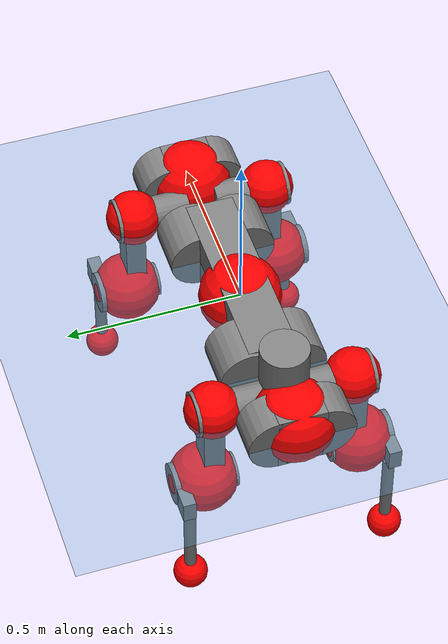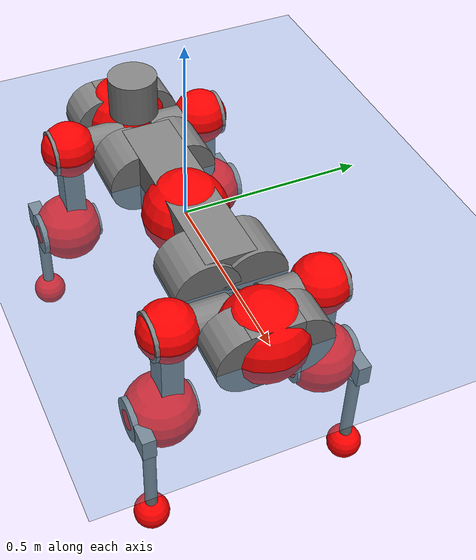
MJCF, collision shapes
<mujoco model="anymal_c">
  <compiler angle="radian" assetdir="assets" balanceinertia="true" inertiafromgeom="false"/>

  <option timestep="0.005" density="1.2" viscosity="2e-05"/>

  <size nkey="1"/>

  <visual>
    <quality shadowsize="8192"/>
    <map shadowclip="0.5"/>
  </visual>

  <default>
    <default class="/">
      <material specular="0" shininess="0.25"/>
      <geom contype="0" conaffinity="0" group="1" solref="-1000 -80"/>
      <site size="0.01 0.005 0.005" group="5"/>
      <general forcelimited="true" forcerange="-80 80" biastype="affine" gainprm="80" biasprm="0 -80 -2"/>
      <default class="anymal_c">
        <joint armature="0.01" damping="0.01" frictionloss="0.1"/>
        <default class="visual">
          <geom type="mesh" group="2"/>
          <default class="visual_zflip"/>
        </default>
        <default class="collision">
          <geom type="cylinder" group="3"/>
          <default class="foot">
            <geom size="0.03 0 0" type="sphere" condim="6" priority="1" friction="0.8 0.02 0.01" solimp="0.015 1 0.03"/>
          </default>
        </default>
      </default>
      <default class="reward_collision_sphere">
        <geom group="5" rgba="1 0 0 1"/>
      </default>
    </default>
  </default>

  <asset>
    <texture type="skybox" colorspace="auto" name="//unnamed_texture_0" builtin="gradient" rgb1="0.95 0.95 0.95" rgb2="0.95 0.95 0.95" width="100" height="600"/>
    <texture type="2d" colorspace="auto" name="texplane" builtin="checker" rgb1="0.345 0.575 0.748" rgb2="0.345 0.575 0.748" markrgb="1 1 1" width="512" height="512"/>
    <texture type="2d" colorspace="linear" name="base" file="base.png"/>
    <texture type="2d" colorspace="linear" name="top_shell" file="top_shell.png"/>
    <texture type="2d" colorspace="linear" name="bottom_shell" file="bottom_shell.png"/>
    <texture type="2d" colorspace="linear" name="remote" file="remote.png"/>
    <texture type="2d" colorspace="linear" name="hatch" file="hatch.png"/>
    <texture type="2d" colorspace="linear" name="handle" file="handle.png"/>
    <texture type="2d" colorspace="linear" name="face" file="face.png"/>
    <texture type="2d" colorspace="linear" name="battery" file="battery.png"/>
    <texture type="2d" colorspace="linear" name="lidar_cage" file="lidar_cage.png"/>
    <texture type="2d" colorspace="linear" name="depth_camera" file="depth_camera.png"/>
    <texture type="2d" colorspace="linear" name="wide_angle_camera" file="wide_angle_camera.png"/>
    <texture type="2d" colorspace="linear" name="lidar" file="lidar.png"/>
    <texture type="2d" colorspace="linear" name="drive" file="drive.png"/>
    <texture type="2d" colorspace="linear" name="hip_l" file="hip_l.png"/>
    <texture type="2d" colorspace="linear" name="shank_l" file="shank_l.png"/>
    <texture type="2d" colorspace="linear" name="foot" file="foot.png"/>
    <texture type="2d" colorspace="linear" name="thigh" file="thigh.png"/>
    <texture type="2d" colorspace="linear" name="shank_r" file="shank_r.png"/>
    <texture type="2d" colorspace="linear" name="hip_r" file="hip_r.png"/>
    <material name="MatPlane" class="/" texture="texplane" texuniform="true" texrepeat="2 2" specular="0.9" shininess="0.5"/>
    <material name="black_plastic" class="/" rgba="0.007 0.007 0.007 1"/>
    <material name="green" class="/" rgba="0.052 0.178 0.033 1"/>
    <material name="red" class="/" rgba="0.178 0.006 0.005 1"/>
    <material name="yellow" class="/" rgba="0.178 0.119 0.006 1"/>
    <material name="lwl" class="/" rgba="0.8 0.8 0.8 1"/>
    <material name="base" class="/" texture="base"/>
    <material name="top_shell" class="/" texture="top_shell"/>
    <material name="bottom_shell" class="/" texture="bottom_shell"/>
    <material name="hip_l" class="/" texture="hip_l"/>
    <material name="thigh" class="/" texture="thigh"/>
    <material name="shank_l" class="/" texture="shank_l"/>
    <material name="foot" class="/" texture="foot"/>
    <material name="hip_r" class="/" texture="hip_r"/>
    <material name="shank" class="/" texture="shank_r"/>
    <material name="hatch" class="/" texture="hatch"/>
    <material name="remote" class="/" texture="remote"/>
    <material name="handle" class="/" texture="handle"/>
    <material name="face" class="/" texture="face"/>
    <material name="depth_camera" class="/" texture="depth_camera"/>
    <material name="wide_angle_camera" class="/" texture="wide_angle_camera"/>
    <material name="battery" class="/" texture="battery"/>
    <material name="lidar_cage" class="/" texture="lidar_cage"/>
    <material name="lidar" class="/" texture="lidar"/>
    <material name="drive" class="/" texture="drive"/>
    <mesh name="base_0" class="/" file="base_0.obj"/>
    <mesh name="base_1" class="/" file="base_1.obj"/>
    <mesh name="base_2" class="/" file="base_2.obj"/>
    <mesh name="base_3" class="/" file="base_3.obj"/>
    <mesh name="base_4" class="/" file="base_4.obj"/>
    <mesh name="base_5" class="/" file="base_5.obj"/>
    <mesh name="top_shell" class="/" file="top_shell.obj"/>
    <mesh name="bottom_shell" class="/" file="bottom_shell.obj"/>
    <mesh name="remote" class="/" file="remote.obj"/>
    <mesh name="handle" class="/" file="handle.obj"/>
    <mesh name="face" class="/" file="face.obj"/>
    <mesh name="wide_angle_camera" class="/" file="wide_angle_camera.obj"/>
    <mesh name="depth_camera" class="/" file="depth_camera.obj"/>
    <mesh name="battery" class="/" file="battery.obj"/>
    <mesh name="lidar_cage" class="/" file="lidar_cage.obj"/>
    <mesh name="lidar" class="/" file="lidar.obj"/>
    <mesh name="drive" class="/" file="drive.obj"/>
    <mesh name="hip_l" class="/" file="hip_l.obj"/>
    <mesh name="thigh" class="/" file="thigh.obj"/>
    <mesh name="shank_l" class="/" file="shank_l.obj"/>
    <mesh name="foot" class="/" file="foot.obj"/>
    <mesh name="hip_r" class="/" file="hip_r.obj"/>
    <mesh name="hatch" class="/" file="hatch.obj"/>
    <mesh name="shank_r" class="/" file="shank_r.obj"/>
  </asset>

  <worldbody>
    <geom name="floor" class="/" size="100 100 0.125" type="plane" group="0" material="MatPlane"/>
    <light name="toplight_shadow" class="/" pos="0 0 5" dir="0.0990148 0.0990148 -0.990148" type="directional" ambient="0.04 0.04 0.04" diffuse="0.55 0.55 0.55" specular="0.12 0.12 0.12"/>
    <light name="toplight_fill" class="/" pos="0 0 5" dir="0.0990148 0.0990148 -0.990148" type="directional" castshadow="false" ambient="0.04 0.04 0.04" diffuse="0.3 0.3 0.3" specular="0.08 0.08 0.08"/>
    <body name="trunk" childclass="anymal_c" pos="0.000708298 0.000337789 0.000840854" quat="1 -0.000163917 0.000273509 -0.000305512">
      <inertial pos="0.00334953 -0.000833804 0.0487588" quat="0.500712 0.5002 0.499411 0.499676" mass="18.0916" diaginertia="0.761465 0.407991 0.209676"/>
      <joint name="//unnamed_joint_0" type="free" armature="0" damping="0" frictionloss="0"/>
      <geom name="//unnamed_geom_1" class="visual" material="green" mesh="base_0"/>
      <geom name="//unnamed_geom_2" class="visual" material="yellow" mesh="base_1"/>
      <geom name="//unnamed_geom_3" class="visual" material="red" mesh="base_2"/>
      <geom name="//unnamed_geom_4" class="visual" material="black_plastic" mesh="base_3"/>
      <geom name="//unnamed_geom_5" class="visual" material="lwl" mesh="base_4"/>
      <geom name="//unnamed_geom_6" class="visual" material="base" mesh="base_5"/>
      <geom name="trunk_1" class="collision" size="0.284124 0.0685817 0.0881765" type="box"/>
      <geom name="trunk_2" class="collision" size="0.0881765 0.0710311" pos="0.224585 0.0642255 0" quat="0.707107 0 0.707107 0"/>
      <geom name="trunk_3" class="collision" size="0.0881765 0.0710311" pos="-0.224585 0.0642255 0" quat="0.707107 0 0.707107 0"/>
      <geom name="trunk_4" class="collision" size="0.0881765 0.0710311" pos="0.224585 -0.0642255 0" quat="0.707107 0 0.707107 0"/>
      <geom name="trunk_5" class="collision" size="0.0881765 0.0710311" pos="-0.224585 -0.0642255 0" quat="0.707107 0 0.707107 0"/>
      <geom name="//unnamed_geom_12" class="visual" material="top_shell" mesh="top_shell"/>
      <geom name="//unnamed_geom_13" class="visual" material="bottom_shell" mesh="bottom_shell"/>
      <geom name="//unnamed_geom_14" class="visual" material="remote" mesh="remote"/>
      <geom name="//unnamed_geom_15" class="visual" material="handle" mesh="handle"/>
      <geom name="//unnamed_geom_16" class="visual" pos="0.428002 0 0" quat="1 0 0 0" material="face" mesh="face"/>
      <geom name="trunk_6" class="collision" size="0.0538856 0.0685817 0.0881765" pos="0.484794 0 0" type="box"/>
      <geom name="//unnamed_geom_18" class="collision" size="0.0881765 0.0538856" pos="0.484794 0.0642255 0" quat="0.707107 0 0.707107 0"/>
      <geom name="//unnamed_geom_19" class="collision" size="0.0881765 0.0538856" pos="0.484794 -0.0642255 0" quat="0.707107 0 0.707107 0"/>
      <geom name="//unnamed_geom_20" class="visual" pos="0.476687 0 -0.0285526" quat="0.965926 0 0.258819 0" material="depth_camera" mesh="depth_camera"/>
      <geom name="//unnamed_geom_21" class="visual" pos="0.529711 0 0.0148073" material="wide_angle_camera" mesh="wide_angle_camera"/>
      <geom name="//unnamed_geom_22" class="visual_zflip" pos="-0.428002 0 0" quat="0 0 0 1" material="face" mesh="face"/>
      <geom name="trunk_7" class="collision" size="0.0538856 0.0685817 0.0881765" pos="-0.484794 0 0" quat="0 0 0 1" type="box"/>
      <geom name="//unnamed_geom_24" class="collision" size="0.0881765 0.0538856" pos="-0.484794 -0.0642255 0" quat="0 -0.707107 0 0.707107"/>
      <geom name="//unnamed_geom_25" class="collision" size="0.0881765 0.0538856" pos="-0.484794 0.0642255 0" quat="0 -0.707107 0 0.707107"/>
      <geom name="//unnamed_geom_26" class="visual" pos="-0.476687 0 -0.0285526" quat="0 -0.258819 0 0.965926" material="depth_camera" mesh="depth_camera"/>
      <geom name="//unnamed_geom_27" class="visual_zflip" pos="-0.529711 0 0.0148073" quat="0 0 0 1" material="wide_angle_camera" mesh="wide_angle_camera"/>
      <geom name="//unnamed_geom_28" class="visual" material="battery" mesh="battery"/>
      <geom name="//unnamed_geom_29" class="visual" pos="0 0.0686409 0.0290645" quat="0.683013 -0.183013 0.183013 0.683013" material="depth_camera" mesh="depth_camera"/>
      <geom name="//unnamed_geom_30" class="visual" pos="0 -0.0686409 0.0290645" quat="0.683013 0.183013 0.183013 -0.683013" material="depth_camera" mesh="depth_camera"/>
      <geom name="//unnamed_geom_31" class="visual" pos="-0.375857 0 0.0727014" quat="1 0 0 0" material="lidar_cage" mesh="lidar_cage"/>
      <geom name="trunk_8" class="collision" size="0.0685817 0.0587843" pos="-0.375857 0 0.132049"/>
      <geom name="//unnamed_geom_33" class="visual" pos="-0.375857 -4.52072e-05 0.140655" quat="0.707107 0 0 -0.707107" material="lidar" mesh="lidar"/>
      <geom name="//unnamed_geom_34" class="visual" pos="0.309669 0.0954462 -1.23558e-09" quat="0.258819 0.965926 0 0" material="drive" mesh="drive"/>
      <geom name="//unnamed_geom_35" class="visual" pos="0.309669 -0.0954462 1.23558e-09" quat="0.258819 -0.965926 0 0" material="drive" mesh="drive"/>
      <geom name="//unnamed_geom_36" class="visual" pos="-0.309669 0.0954462 1.23558e-09" quat="0 0 0.965926 -0.258819" material="drive" mesh="drive"/>
      <geom name="//unnamed_geom_37" class="visual" pos="-0.309669 -0.0954462 -1.23558e-09" quat="0 0 -0.965926 -0.258819" material="drive" mesh="drive"/>
      <geom name="//unnamed_geom_38" class="visual" pos="0.119779 0 0.0722068" quat="1 0 0 0" material="hatch" mesh="hatch"/>
      <geom name="//unnamed_geom_39" class="reward_collision_sphere" size="0.117569"/>
      <geom name="//unnamed_geom_40" class="reward_collision_sphere" size="0.117569" pos="0.464659 0 0"/>
      <geom name="//unnamed_geom_41" class="reward_collision_sphere" size="0.117569" pos="-0.464659 0 0"/>
      <site name="imu" pos="0.252368 0.00194095 0.047064" size="0.00979739"/>
      <camera name="track" pos="0 -1.83501 0" quat="0.707107 0.707107 0 0" mode="trackcom"/>
      <camera name="ego_camera" pos="0.464659 0 -0.0395654" quat="-0.5 -0.5 0.5 0.5"/>
      <body name="LF_HIP" pos="0.310142 0.0957017 0.000545947" quat="0.259024 0.965871 -0.000178665 -0.000334357">
        <inertial pos="0.0594049 -0.0140213 -0.00832101" quat="-0.126622 0.710903 -0.132555 0.678979" mass="2.6325" diaginertia="0.00692074 0.00321338 0.00310119"/>
        <joint name="LF_HAA" pos="0 0 0" axis="0.999997 0.00153648 -0.00205803" range="-0.71131 0.49208" armature="0.00953073" damping="0.0101911" frictionloss="0.0959659"/>
        <geom name="//unnamed_geom_42" class="visual" pos="0 -7.26838e-05 1.19383e-05" quat="0.258819 -0.965926 0 0" material="hip_l" mesh="hip_l"/>
        <geom name="//unnamed_geom_43" class="visual" pos="0.0618513 -0.0734564 -0.0429399" quat="0.183013 -0.683013 0.683013 0.183013" material="drive" mesh="drive"/>
        <geom name="//unnamed_geom_44" class="collision" size="0.048987 0.0685817" pos="0.0618513 -0.0109732 -0.00682998" quat="-0.353553 -0.612372 0.612372 -0.353553"/>
        <body name="LF_THIGH" pos="0.0621164 -0.0670186 -0.0402276" quat="0.182944 -0.683034 0.683027 0.182947">
          <inertial pos="0.0321087 -0.000356991 -0.24412" quat="0.993236 -0.00466388 -0.0805007 0.0835481" mass="2.85923" diaginertia="0.0355818 0.0195821 0.00397204"/>
          <joint name="LF_HFE" pos="0 0 0" axis="0.999998 -0.00187639 0.000936037" range="-3.14062 3.15599" armature="0.0101116" damping="0.00282382" frictionloss="0.0978611"/>
          <geom name="//unnamed_geom_45" class="visual" pos="0.00228941 3.60757e-06 0" quat="0.707107 0 0 -0.707107" material="thigh" mesh="thigh"/>
          <geom name="//unnamed_geom_46" class="collision" size="0.063683 0.0391896" pos="0.041303 0 0" quat="0.5 0.5 -0.5 -0.5"/>
          <geom name="//unnamed_geom_47" class="collision" size="0.0367402 0.0293922 0.138451" pos="0.0309773 0 -0.139779" quat="0.707107 0 0 -0.707107" type="box"/>
          <geom name="//unnamed_geom_48" class="visual" pos="0.103567 0 -0.281903" quat="1 0 0 0" material="drive" mesh="drive"/>
          <geom name="//unnamed_geom_49" class="collision" size="0.048987 0.0685817" pos="0.031287 0 -0.281903" quat="0.707107 0 0.707107 0"/>
          <geom name="//unnamed_geom_50" class="reward_collision_sphere" size="0.0783791" pos="0.0258144 0 0"/>
          <body name="LF_SHANK" pos="0.10488 0.000489847 -0.282687" quat="1 5.00498e-05 -3.12651e-05 2.05968e-05">
            <inertial pos="0.00542122 -0.0552929 -0.0806116" quat="0.99295 -0.115703 -0.000787853 -0.025737" mass="0.55682" diaginertia="0.0118311 0.00598146 0.0010606"/>
            <joint name="LF_KFE" pos="0 0 0" axis="1 -0.000200042 -0.000771645" range="-3.15709 3.13693" armature="0.00981475" damping="0.00927981" frictionloss="0.0970041"/>
            <geom name="//unnamed_geom_51" class="visual" pos="0.000746525 0.00398051 0" quat="0.707107 0 0 -0.707107" material="shank_l" mesh="shank_l"/>
            <geom name="LF_kfe_act" class="collision" size="0.0587843 0.0195948" pos="0.0206515 0 0" quat="0.5 0.5 -0.5 -0.5"/>
            <geom name="//unnamed_geom_53" class="collision" size="0.056334 0.0330662 0.018615" pos="0.0206515 -0.0527557 0" quat="0.5 0.5 -0.5 -0.5" type="box"/>
            <geom name="//unnamed_geom_54" class="visual" pos="0.0134749 -0.079412 -0.334298" quat="0.382683 0 0 -0.92388" material="foot" mesh="foot"/>
            <geom name="LF_calf" class="collision" size="0.0171454 0.13839" pos="0.0134751 -0.0806948 -0.167149" quat="0.707107 0 0 -0.707107"/>
            <geom name="LF_foot" class="foot" size="0.0290032" pos="0.0134751 -0.0806948 -0.312042" quat="0.707107 0 0 -0.707107"/>
            <geom name="//unnamed_geom_57" class="reward_collision_sphere" size="0.0979739" pos="-0.0516288 0 0"/>
            <geom name="//unnamed_geom_58" class="reward_collision_sphere" size="0.048987" pos="0.0134751 -0.0806948 -0.312042"/>
            <site name="LF_foot" class="foot" pos="0.0134751 -0.0806948 -0.312042" quat="0.707107 0 0 -0.707107" size="0.00979739"/>
          </body>
        </body>
      </body>
      <body name="RF_HIP" pos="0.309318 -0.0969691 0.000586288" quat="0.258835 -0.965921 -2.35042e-05 -3.43832e-05">
        <inertial pos="0.0582944 0.0152517 -0.00817329" quat="0.134308 0.679435 0.129891 0.709548" mass="2.63974" diaginertia="0.00700622 0.00320227 0.00315909"/>
        <joint name="RF_HAA" pos="0 0 0" axis="0.999999 0.00141223 0.000722723" range="-0.505846 0.715836" armature="0.00981638" damping="0.00837737" frictionloss="0.0973982"/>
        <geom name="//unnamed_geom_59" class="visual" pos="0 7.26833e-05 1.19382e-05" quat="0.258819 0.965926 0 0" material="hip_r" mesh="hip_r"/>
        <geom name="//unnamed_geom_60" class="visual" pos="0.0618513 0.0734564 -0.0429399" quat="0.183013 0.683013 0.683013 -0.183013" material="drive" mesh="drive"/>
        <geom name="//unnamed_geom_61" class="collision" size="0.048987 0.0685817" pos="0.0618513 0.0109732 -0.00682998" quat="-0.353553 0.612372 0.612372 0.353553"/>
        <body name="RF_THIGH" pos="0.0613791 0.0663816 -0.0410839" quat="0.183015 0.683026 0.682998 -0.183013">
          <inertial pos="0.0318606 -8.84107e-05 -0.243429" quat="0.992931 -0.0107517 -0.0781285 0.0887004" mass="2.91036" diaginertia="0.0361536 0.0195647 0.00398745"/>
          <joint name="RF_HFE" pos="0 0 0" axis="1 -9.32414e-05 -0.000206605" stiffness="0.00605499" range="-3.15369 3.13256" armature="0.00998345" damping="0.00984096" frictionloss="0.10027"/>
          <geom name="//unnamed_geom_62" class="visual" pos="0.00228941 3.60757e-06 0" quat="0.707107 0 0 -0.707107" material="thigh" mesh="thigh"/>
          <geom name="//unnamed_geom_63" class="collision" size="0.063683 0.0391896" pos="0.041303 0 0" quat="0.5 0.5 0.5 0.5"/>
          <geom name="//unnamed_geom_64" class="collision" size="0.0367402 0.0293922 0.138451" pos="0.0309773 0 -0.139779" quat="0.707107 0 0 0.707107" type="box"/>
          <geom name="//unnamed_geom_65" class="visual" pos="0.103567 0 -0.281903" quat="1 0 0 0" material="drive" mesh="drive"/>
          <geom name="//unnamed_geom_66" class="collision" size="0.048987 0.0685817" pos="0.031287 0 -0.281903" quat="0.707107 0 0.707107 0"/>
          <geom name="//unnamed_geom_67" class="reward_collision_sphere" size="0.0783791" pos="0.0258144 0 0"/>
          <body name="RF_SHANK" pos="0.103215 0.000337385 -0.281863" quat="1 -9.36458e-07 -1.05365e-06 2.36154e-07">
            <inertial pos="0.00633691 0.0560144 -0.0782977" quat="0.993351 0.112058 0.00101168 0.0263599" mass="0.547926" diaginertia="0.0116651 0.00599186 0.00103923"/>
            <joint name="RF_KFE" pos="0 0 0" axis="0.999998 0.00180944 -0.00039348" range="-3.14062 3.15463" armature="0.00949863" damping="0.00886538" frictionloss="0.0977995"/>
            <geom name="//unnamed_geom_68" class="visual" pos="0.000746521 -0.0039805 0" quat="0.707107 0 0 0.707107" material="shank" mesh="shank_r"/>
            <geom name="RF_kfe_act" class="collision" size="0.0587843 0.0195948" pos="0.0206515 0 0" quat="0.5 0.5 0.5 0.5"/>
            <geom name="//unnamed_geom_70" class="collision" size="0.056334 0.0330662 0.018615" pos="0.0206515 0.0527557 0" quat="0.5 0.5 0.5 0.5" type="box"/>
            <geom name="//unnamed_geom_71" class="visual" pos="0.0134753 0.079412 -0.334298" quat="0.382683 0 0 0.92388" material="foot" mesh="foot"/>
            <geom name="RF_calf" class="collision" size="0.0171454 0.13839" pos="0.0134751 0.0806948 -0.167149" quat="0.707107 0 0 0.707107"/>
            <geom name="RF_foot" class="foot" size="0.0296322" pos="0.0134751 0.0806948 -0.312042" quat="0.707107 0 0 0.707107"/>
            <geom name="//unnamed_geom_74" class="reward_collision_sphere" size="0.0979739" pos="-0.0516288 0 0"/>
            <geom name="//unnamed_geom_75" class="reward_collision_sphere" size="0.048987" pos="0.0134751 0.0806948 -0.312042"/>
            <site name="RF_foot" class="foot" pos="0.0134751 0.0806948 -0.312042" quat="0.707107 0 0 0.707107" size="0.00979739"/>
          </body>
        </body>
      </body>
      <body name="LH_HIP" pos="-0.309471 0.096182 0.000122994" quat="-5.22757e-05 3.31175e-05 0.965928 -0.258812">
        <inertial pos="0.0588612 0.013988 -0.00857472" quat="0.135497 0.679373 0.126705 0.709956" mass="2.61974" diaginertia="0.00686211 0.00322457 0.00310037"/>
        <joint name="LH_HAA" pos="0 0 0" axis="0.999999 -0.00126673 -0.00053242" range="-0.475361 0.728975" armature="0.00973653" damping="0.0133391" frictionloss="0.0993537"/>
        <geom name="//unnamed_geom_76" class="visual" pos="0 7.26833e-05 1.19382e-05" quat="-0.258819 -0.965926 0 0" material="hip_r" mesh="hip_r"/>
        <geom name="//unnamed_geom_77" class="visual" pos="0.0618513 0.0734564 -0.0429399" quat="0.183013 0.683013 0.683013 -0.183013" material="drive" mesh="drive"/>
        <geom name="//unnamed_geom_78" class="collision" size="0.048987 0.0685817" pos="0.0618513 0.0109732 -0.00682998" quat="-0.353553 0.612372 0.612372 0.353553"/>
        <body name="LH_THIGH" pos="0.0611293 0.0659867 -0.0413702" quat="0.182859 0.683079 0.682954 -0.183137">
          <inertial pos="0.031752 0.000251317 -0.243905" quat="0.992733 -0.00497449 -0.0801578 0.0896135" mass="2.85028" diaginertia="0.0350164 0.0192819 0.00391829"/>
          <joint name="LH_HFE" pos="0 0 0" axis="0.999999 0.000841748 0.00109841" stiffness="0.0025299" range="-3.14791 3.12975" armature="0.00963112" damping="0.00849001" frictionloss="0.0972264"/>
          <geom name="//unnamed_geom_79" class="visual" pos="0.00228941 3.60757e-06 0" quat="0.707107 0 0 -0.707107" material="thigh" mesh="thigh"/>
          <geom name="//unnamed_geom_80" class="collision" size="0.063683 0.0391896" pos="0.041303 0 0" quat="0.5 0.5 -0.5 -0.5"/>
          <geom name="//unnamed_geom_81" class="collision" size="0.0367402 0.0293922 0.138451" pos="0.0309773 0 -0.139779" quat="0.707107 0 0 -0.707107" type="box"/>
          <geom name="//unnamed_geom_82" class="visual" pos="0.103567 0 -0.281903" quat="1 0 0 0" material="drive" mesh="drive"/>
          <geom name="//unnamed_geom_83" class="collision" size="0.048987 0.0685817" pos="0.031287 0 -0.281903" quat="0.707107 0 0.707107 0"/>
          <geom name="//unnamed_geom_84" class="reward_collision_sphere" size="0.0783791" pos="0.0258144 0 0"/>
          <body name="LH_SHANK" pos="0.104294 -0.0012024 -0.281653" quat="1 -1.86028e-06 1.48581e-05 -4.78143e-05">
            <inertial pos="0.00472227 0.0570569 -0.0805685" quat="0.992902 0.116489 -0.000301557 0.0239814" mass="0.556705" diaginertia="0.0119368 0.00596372 0.00106065"/>
            <joint name="LH_KFE" pos="0 0 0" axis="1 -0.000540102 -0.000336544" range="-3.14324 3.13982" armature="0.0099679" damping="0.0115594" frictionloss="0.0935041"/>
            <geom name="//unnamed_geom_85" class="visual" pos="0.000746521 -0.0039805 0" quat="-0.707107 0 0 -0.707107" material="shank" mesh="shank_r"/>
            <geom name="LH_kfe_act" class="collision" size="0.0587843 0.0195948" pos="0.0206515 0 0" quat="0.5 0.5 -0.5 -0.5"/>
            <geom name="//unnamed_geom_87" class="collision" size="0.056334 0.0330662 0.018615" pos="0.0206515 0.0527557 0" quat="0.5 0.5 -0.5 -0.5" type="box"/>
            <geom name="//unnamed_geom_88" class="visual" pos="0.0134753 0.079412 -0.334298" quat="-0.382683 0 0 -0.92388" material="foot" mesh="foot"/>
            <geom name="LH_calf" class="collision" size="0.0171454 0.13839" pos="0.0134751 0.0806948 -0.167149" quat="0.707107 0 0 -0.707107"/>
            <geom name="LH_foot" class="foot" size="0.0308356" pos="0.0134751 0.0806948 -0.312042" quat="0.707107 0 0 -0.707107"/>
            <geom name="//unnamed_geom_91" class="reward_collision_sphere" size="0.0979739" pos="-0.0516288 0 0"/>
            <geom name="//unnamed_geom_92" class="reward_collision_sphere" size="0.048987" pos="0.0134751 0.0806948 -0.312042"/>
            <site name="LH_foot" class="foot" pos="0.0134751 0.0806948 -0.312042" quat="0.707107 0 0 -0.707107" size="0.00979739"/>
          </body>
        </body>
      </body>
      <body name="RH_HIP" pos="-0.3096 -0.0949373 0.000120906" quat="0.000147714 -0.000121342 -0.965943 -0.258756">
        <inertial pos="0.0585896 -0.0139766 -0.00770031" quat="-0.127984 0.709577 -0.135364 0.679557" mass="2.56434" diaginertia="0.00675635 0.00314122 0.00307843"/>
        <joint name="RH_HAA" pos="0 0 0" axis="1 -0.000270272 -0.000429047" range="-0.726857 0.498906" armature="0.0102525" damping="0.00919061" frictionloss="0.0968006"/>
        <geom name="//unnamed_geom_93" class="visual" pos="0 -7.26838e-05 1.19383e-05" quat="-0.258819 0.965926 0 0" material="hip_l" mesh="hip_l"/>
        <geom name="//unnamed_geom_94" class="visual" pos="0.0618513 -0.0734564 -0.0429399" quat="-0.183013 0.683013 -0.683013 -0.183013" material="drive" mesh="drive"/>
        <geom name="//unnamed_geom_95" class="collision" size="0.048987 0.0685817" pos="0.0618513 -0.0109732 -0.00682998" quat="0.353553 0.612372 -0.612372 0.353553"/>
        <body name="RH_THIGH" pos="0.0621965 -0.0666945 -0.0411984" quat="-0.183045 0.683019 -0.682999 -0.18301">
          <inertial pos="0.0329625 -0.000766009 -0.242896" quat="0.993218 -0.00488103 -0.0802311 0.0840053" mass="2.90608" diaginertia="0.0352979 0.0195119 0.0039588"/>
          <joint name="RH_HFE" pos="0 0 0" axis="0.999992 -0.000686904 -0.00393224" range="-3.15129 3.15066" armature="0.00972248" damping="0.00788061" frictionloss="0.0990212"/>
          <geom name="//unnamed_geom_96" class="visual" pos="0.00228941 3.60757e-06 0" quat="0.707107 0 0 -0.707107" material="thigh" mesh="thigh"/>
          <geom name="//unnamed_geom_97" class="collision" size="0.063683 0.0391896" pos="0.041303 0 0" quat="0.5 0.5 0.5 0.5"/>
          <geom name="//unnamed_geom_98" class="collision" size="0.0367402 0.0293922 0.138451" pos="0.0309773 0 -0.139779" quat="0.707107 0 0 0.707107" type="box"/>
          <geom name="//unnamed_geom_99" class="visual" pos="0.103567 0 -0.281903" quat="1 0 0 0" material="drive" mesh="drive"/>
          <geom name="//unnamed_geom_100" class="collision" size="0.048987 0.0685817" pos="0.031287 0 -0.281903" quat="0.707107 0 0.707107 0"/>
          <geom name="//unnamed_geom_101" class="reward_collision_sphere" size="0.0783791" pos="0.0258144 0 0"/>
          <body name="RH_SHANK" pos="0.103789 0.000682932 -0.281846" quat="1 0.000134455 -0.000163773 -0.000109818">
            <inertial pos="0.00549792 -0.0560806 -0.0796617" quat="0.993155 -0.113987 -0.00134954 -0.0254497" mass="0.562999" diaginertia="0.0119797 0.00608045 0.00106666"/>
            <joint name="RH_KFE" pos="0 0 0" axis="0.999965 -0.00551677 0.0062958" range="-3.1279 3.11786" armature="0.010133" damping="0.000363569" frictionloss="0.0972131"/>
            <geom name="//unnamed_geom_102" class="visual" pos="0.000746525 0.00398051 0" quat="0.707107 0 0 -0.707107" material="shank_l" mesh="shank_l"/>
            <geom name="RH_kfe_act" class="collision" size="0.0587843 0.0195948" pos="0.0206515 0 0" quat="0.5 0.5 0.5 0.5"/>
            <geom name="//unnamed_geom_104" class="collision" size="0.056334 0.0330662 0.018615" pos="0.0206515 -0.0527557 0" quat="0.5 0.5 0.5 0.5" type="box"/>
            <geom name="//unnamed_geom_105" class="visual" pos="0.0134749 -0.079412 -0.334298" quat="0.382683 0 0 -0.92388" material="foot" mesh="foot"/>
            <geom name="RH_calf" class="collision" size="0.0171454 0.13839" pos="0.0134751 -0.0806948 -0.167149" quat="0.707107 0 0 0.707107"/>
            <geom name="RH_foot" class="foot" size="0.0283404" pos="0.0134751 -0.0806948 -0.312042" quat="0.707107 0 0 0.707107"/>
            <geom name="//unnamed_geom_108" class="reward_collision_sphere" size="0.0979739" pos="-0.0516288 0 0"/>
            <geom name="//unnamed_geom_109" class="reward_collision_sphere" size="0.048987" pos="0.0134751 -0.0806948 -0.312042"/>
            <site name="RH_foot" class="foot" pos="0.0134751 -0.0806948 -0.312042" quat="0.707107 0 0 0.707107" size="0.00979739"/>
          </body>
        </body>
      </body>
    </body>
  </worldbody>

  <contact>
    <pair class="/" geom1="floor" geom2="LF_foot" name="//unnamed_contact_0"/>
    <pair class="/" geom1="floor" geom2="RF_foot" name="//unnamed_contact_1"/>
    <pair class="/" geom1="floor" geom2="LH_foot" name="//unnamed_contact_2"/>
    <pair class="/" geom1="floor" geom2="RH_foot" name="//unnamed_contact_3"/>
  </contact>

  <actuator>
    <general name="LF_HAA" class="/" joint="LF_HAA" forcerange="-80.143 80.143" gainprm="81.4495" biasprm="0 -81.4495 -2.00538"/>
    <general name="LF_HFE" class="/" joint="LF_HFE" forcerange="-78.8161 78.8161" gainprm="81.4495" biasprm="0 -81.4495 -2.00538"/>
    <general name="LF_KFE" class="/" joint="LF_KFE" forcerange="-78.7288 78.7288" gainprm="81.4495" biasprm="0 -81.4495 -2.00538"/>
    <general name="RF_HAA" class="/" joint="RF_HAA" forcerange="-79.5971 79.5971" gainprm="81.4495" biasprm="0 -81.4495 -2.00538"/>
    <general name="RF_HFE" class="/" joint="RF_HFE" forcerange="-77.0584 77.0584" gainprm="81.4495" biasprm="0 -81.4495 -2.00538"/>
    <general name="RF_KFE" class="/" joint="RF_KFE" forcerange="-82.5597 82.5597" gainprm="81.4495" biasprm="0 -81.4495 -2.00538"/>
    <general name="LH_HAA" class="/" joint="LH_HAA" forcerange="-80.6518 80.6518" gainprm="81.4495" biasprm="0 -81.4495 -2.00538"/>
    <general name="LH_HFE" class="/" joint="LH_HFE" forcerange="-76.0038 76.0038" gainprm="81.4495" biasprm="0 -81.4495 -2.00538"/>
    <general name="LH_KFE" class="/" joint="LH_KFE" forcerange="-80.048 80.048" gainprm="81.4495" biasprm="0 -81.4495 -2.00538"/>
    <general name="RH_HAA" class="/" joint="RH_HAA" forcerange="-79.2243 79.2243" gainprm="81.4495" biasprm="0 -81.4495 -2.00538"/>
    <general name="RH_HFE" class="/" joint="RH_HFE" forcerange="-76.0223 76.0223" gainprm="81.4495" biasprm="0 -81.4495 -2.00538"/>
    <general name="RH_KFE" class="/" joint="RH_KFE" forcerange="-79.4804 79.4804" gainprm="81.4495" biasprm="0 -81.4495 -2.00538"/>
  </actuator>

  <sensor>
    <gyro site="imu" name="imu_angular_velocity"/>
    <velocimeter site="imu" name="imu_linear_velocity"/>
    <framelinvel objtype="site" objname="LF_foot" name="LF_foot_global_linear_velocity"/>
    <framelinvel objtype="site" objname="RF_foot" name="RF_foot_global_linear_velocity"/>
    <framelinvel objtype="site" objname="LH_foot" name="LH_foot_global_linear_velocity"/>
    <framelinvel objtype="site" objname="RH_foot" name="RH_foot_global_linear_velocity"/>
  </sensor>

  <keyframe>
    <key name="home" qpos="0 0 0.55 1 0 0 0 0 0.4 -0.8 0 -0.4 0.8 0 -0.4 0.8 0 0.4 -0.8"/>
  </keyframe>
</mujoco>
